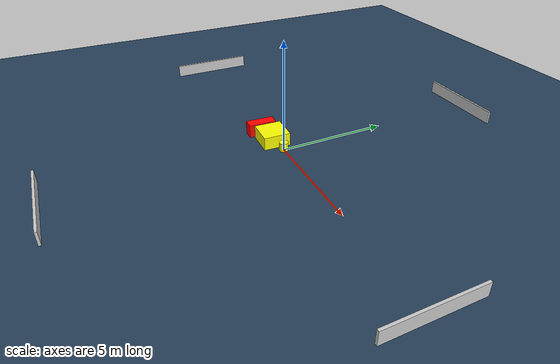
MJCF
<?xml version="1.0" ?>
<mujoco model="generated_environment">
  <option timestep="0.01" integrator="RK4" cone="elliptic"/>
  <default>
    <geom density="1"/>
  </default>
  <asset>
    <texture builtin="gradient" height="3072" name="skybox" rgb1="0.3 0.5 0.7" rgb2="0 0 0" type="skybox" width="512"/>
    <texture builtin="checker" height="300" name="groundplane" rgb1="0.2 0.3 0.4" rgb2="0.1 0.2 0.3" type="2d" width="300"/>
    <material name="groundplane" reflectance="0.2" texrepeat="5 5" texture="groundplane"/>
  </asset>
  <worldbody>
    <light dir="0 0 -1" directional="true" pos="0 0 1.5"/>
    <geom condim="3" friction="0.5 0.005 0.001" material="groundplane" name="floor" pos="0 0 0" size="0 0 0.05" type="plane"/>
    <body name="walls">
      <geom name="wall_1" condim="4" pos="-10.0 0.0 0.3" rgba="0.800000011920929 0.800000011920929 0.800000011920929 1.0" size="0.05 2.0 0.3" type="box"/>
      <geom name="wall_2" condim="4" pos="10.0 0.0 0.3" rgba="0.800000011920929 0.800000011920929 0.800000011920929 1.0" size="0.05 2.0 0.3" type="box"/>
      <geom name="wall_3" condim="4" pos="0.0 -10.0 0.3" rgba="0.800000011920929 0.800000011920929 0.800000011920929 1.0" size="2.0 0.05 0.3" type="box"/>
      <geom name="wall_4" condim="4" pos="0.0 10.0 0.3" rgba="0.800000011920929 0.800000011920929 0.800000011920929 1.0" size="2.0 0.05 0.3" type="box"/>
    </body>
    <body name="robot">
      <joint name="joint_x" type="slide" pos="0 0 0" axis="1 0 0"/>
      <joint name="joint_y" type="slide" pos="0 0 0" axis="0 1 0"/>
      <geom name="robot" type="cylinder" pos="0.0 0.0 0.2" size="0.2 0.2 0.0" mass="5.0" friction="1.0 0.005 0.0001" condim="4" rgba="1.0 1.0 0.0 1.0"/>
    </body>
    <body name="obstacle_1_movable">
      <geom name="obstacle_1_movable" condim="4" pos="-0.9056380338276561 -0.13863694214165642 0.3" euler="0 0 87.60558277203137" friction="0.0 0.005 0.001" rgba="1.0 1.0 0.0 1.0" size="0.6172667028038514 0.611532223402198 0.3" type="box" mass="0.1"/>
      <joint type="free"/>
    </body>
    <body name="obstacle_2_static">
      <geom name="obstacle_2_static" condim="4" pos="-1.8561409319621704 -0.2833235111662091 0.3" euler="0 0 87.19882396932827" friction="0.0 0.005 0.001" rgba="1.0 0.0 0.0 1.0" size="0.6452194320952718 0.2517865163162222 0.3" type="box"/>
    </body>
  </worldbody>
  <actuator>
    <motor name="actuator_x" joint="joint_x" gear="1" ctrlrange="-1 1"/>
    <motor name="actuator_y" joint="joint_y" gear="1" ctrlrange="-1 1"/>
  </actuator>
</mujoco>
